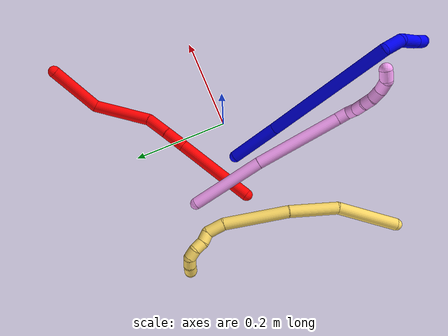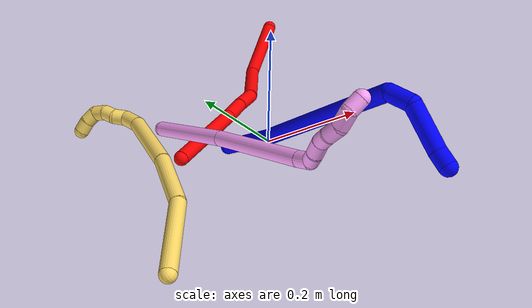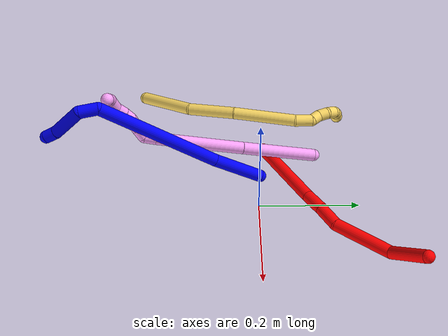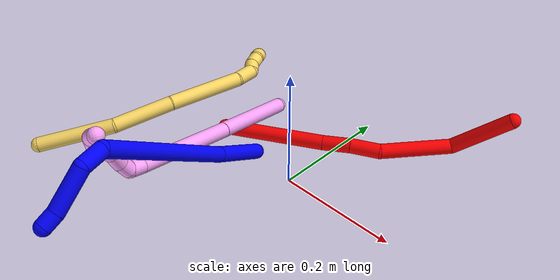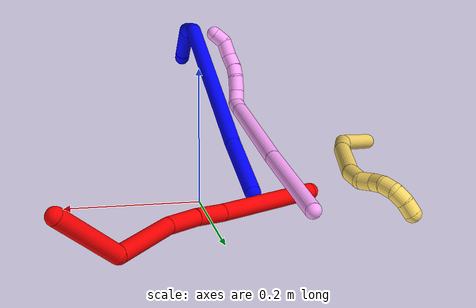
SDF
<sdf version="1.7">
 <world name="default">
  <model name="1">
   <static>0</static>
   <link name="1">
    <collision name="collision-cylinder-e_1_1_4">
     <pose>0.000542 -0.017466 0.050607 0.332321 0.010127 0.001698</pose>
     <geometry><cylinder><radius>0.0125</radius><length>0.107078</length></cylinder></geometry>
     <surface>
      <friction><ode><mu>1.16</mu><mu2>1.16</mu2><slip1>0</slip1><slip2>0</slip2></ode></friction>
      <contact><ode><kp>1e+06</kp><kd>1</kd><max_vel>0</max_vel><min_depth>0.001</min_depth></ode></contact>
     </surface>
    </collision>
    <visual name="visual-cylinder-e_1_1_4">
     <pose>0.000542 -0.017466 0.050607 0.332321 0.010127 0.001698</pose>
     <geometry><cylinder><radius>0.0125</radius><length>0.107078</length></cylinder></geometry>
     <material><ambient>0 0 1 1</ambient></material>
    </visual>
    <collision name="collision-cylinder-e_2_4_5">
     <pose>0.008931 -0.07005 0.228775 0.268658 0.059238 0.008008</pose>
     <geometry><cylinder><radius>0.0125</radius><length>0.265078</length></cylinder></geometry>
     <surface>
      <friction><ode><mu>1.16</mu><mu2>1.16</mu2><slip1>0</slip1><slip2>0</slip2></ode></friction>
      <contact><ode><kp>1e+06</kp><kd>1</kd><max_vel>0</max_vel><min_depth>0.001</min_depth></ode></contact>
     </surface>
    </collision>
    <visual name="visual-cylinder-e_2_4_5">
     <pose>0.008931 -0.07005 0.228775 0.268658 0.059238 0.008008</pose>
     <geometry><cylinder><radius>0.0125</radius><length>0.265078</length></cylinder></geometry>
     <material><ambient>0 0 1 1</ambient></material>
    </visual>
    <collision name="collision-cylinder-e_3_5_6">
     <pose>0.009843 -0.118156 0.368008 0.83862 -0.378052 -0.170139</pose>
     <geometry><cylinder><radius>0.0125</radius><length>0.037578</length></cylinder></geometry>
     <surface>
      <friction><ode><mu>1.16</mu><mu2>1.16</mu2><slip1>0</slip1><slip2>0</slip2></ode></friction>
      <contact><ode><kp>1e+06</kp><kd>1</kd><max_vel>0</max_vel><min_depth>0.001</min_depth></ode></contact>
     </surface>
    </collision>
    <visual name="visual-cylinder-e_3_5_6">
     <pose>0.009843 -0.118156 0.368008 0.83862 -0.378052 -0.170139</pose>
     <geometry><cylinder><radius>0.0125</radius><length>0.037578</length></cylinder></geometry>
     <material><ambient>0 0 1 1</ambient></material>
    </visual>
    <collision name="collision-cylinder-e_4_6_7">
     <pose>-0.020935 -0.154506 0.381062 1.51176 -0.794696 -0.753412</pose>
     <geometry><cylinder><radius>0.0125</radius><length>0.06682</length></cylinder></geometry>
     <surface>
      <friction><ode><mu>1.16</mu><mu2>1.16</mu2><slip1>0</slip1><slip2>0</slip2></ode></friction>
      <contact><ode><kp>1e+06</kp><kd>1</kd><max_vel>0</max_vel><min_depth>0.001</min_depth></ode></contact>
     </surface>
    </collision>
    <visual name="visual-cylinder-e_4_6_7">
     <pose>-0.020935 -0.154506 0.381062 1.51176 -0.794696 -0.753412</pose>
     <geometry><cylinder><radius>0.0125</radius><length>0.06682</length></cylinder></geometry>
     <material><ambient>0 0 1 1</ambient></material>
    </visual>
    <collision name="collision-cylinder-e_5_7_2">
     <pose>-0.053116 -0.185398 0.385795 1.15195 -0.791196 -0.529679</pose>
     <geometry><cylinder><radius>0.0125</radius><length>0.023447</length></cylinder></geometry>
     <surface>
      <friction><ode><mu>1.16</mu><mu2>1.16</mu2><slip1>0</slip1><slip2>0</slip2></ode></friction>
      <contact><ode><kp>1e+06</kp><kd>1</kd><max_vel>0</max_vel><min_depth>0.001</min_depth></ode></contact>
     </surface>
    </collision>
    <visual name="visual-cylinder-e_5_7_2">
     <pose>-0.053116 -0.185398 0.385795 1.15195 -0.791196 -0.529679</pose>
     <geometry><cylinder><radius>0.0125</radius><length>0.023447</length></cylinder></geometry>
     <material><ambient>0 0 1 1</ambient></material>
    </visual>
    <collision name="collision-sphere-2">
     <pose>-0.061453 -0.192927 0.389147 0 -0 0</pose>
     <geometry><sphere><radius>0.0125</radius></sphere></geometry>
     <surface>
      <friction><ode><mu>1.16</mu><mu2>1.16</mu2><slip1>0</slip1><slip2>0</slip2></ode></friction>
      <contact><ode><kp>1e+06</kp><kd>1</kd><max_vel>0</max_vel><min_depth>0.001</min_depth></ode></contact>
     </surface>
    </collision>
    <visual name="visual-sphere-2">
     <pose>-0.061453 -0.192927 0.389147 0 -0 0</pose>
     <geometry><sphere><radius>0.0125</radius></sphere></geometry>
     <material><ambient>0 0 1 1</ambient></material>
    </visual>
    <collision name="collision-sphere-7">
     <pose>-0.044778 -0.177869 0.382443 0 -0 0</pose>
     <geometry><sphere><radius>0.0125</radius></sphere></geometry>
     <surface>
      <friction><ode><mu>1.16</mu><mu2>1.16</mu2><slip1>0</slip1><slip2>0</slip2></ode></friction>
      <contact><ode><kp>1e+06</kp><kd>1</kd><max_vel>0</max_vel><min_depth>0.001</min_depth></ode></contact>
     </surface>
    </collision>
    <visual name="visual-sphere-7">
     <pose>-0.044778 -0.177869 0.382443 0 -0 0</pose>
     <geometry><sphere><radius>0.0125</radius></sphere></geometry>
     <material><ambient>0 0 1 1</ambient></material>
    </visual>
    <collision name="collision-sphere-6">
     <pose>0.002908 -0.131143 0.379682 0 -0 0</pose>
     <geometry><sphere><radius>0.0125</radius></sphere></geometry>
     <surface>
      <friction><ode><mu>1.16</mu><mu2>1.16</mu2><slip1>0</slip1><slip2>0</slip2></ode></friction>
      <contact><ode><kp>1e+06</kp><kd>1</kd><max_vel>0</max_vel><min_depth>0.001</min_depth></ode></contact>
     </surface>
    </collision>
    <visual name="visual-sphere-6">
     <pose>0.002908 -0.131143 0.379682 0 -0 0</pose>
     <geometry><sphere><radius>0.0125</radius></sphere></geometry>
     <material><ambient>0 0 1 1</ambient></material>
    </visual>
    <collision name="collision-sphere-5">
     <pose>0.016778 -0.105169 0.356335 0 -0 0</pose>
     <geometry><sphere><radius>0.0125</radius></sphere></geometry>
     <surface>
      <friction><ode><mu>1.16</mu><mu2>1.16</mu2><slip1>0</slip1><slip2>0</slip2></ode></friction>
      <contact><ode><kp>1e+06</kp><kd>1</kd><max_vel>0</max_vel><min_depth>0.001</min_depth></ode></contact>
     </surface>
    </collision>
    <visual name="visual-sphere-5">
     <pose>0.016778 -0.105169 0.356335 0 -0 0</pose>
     <geometry><sphere><radius>0.0125</radius></sphere></geometry>
     <material><ambient>0 0 1 1</ambient></material>
    </visual>
    <collision name="collision-sphere-1">
     <geometry><sphere><radius>0.0125</radius></sphere></geometry>
     <surface>
      <friction><ode><mu>1.16</mu><mu2>1.16</mu2><slip1>0</slip1><slip2>0</slip2></ode></friction>
      <contact><ode><kp>1e+06</kp><kd>1</kd><max_vel>0</max_vel><min_depth>0.001</min_depth></ode></contact>
     </surface>
    </collision>
    <visual name="visual-sphere-1">
     <geometry><sphere><radius>0.0125</radius></sphere></geometry>
     <material><ambient>0 0 1 1</ambient></material>
    </visual>
    <collision name="collision-sphere-4">
     <pose>0.001084 -0.034931 0.101214 0 -0 0</pose>
     <geometry><sphere><radius>0.0125</radius></sphere></geometry>
     <surface>
      <friction><ode><mu>1.16</mu><mu2>1.16</mu2><slip1>0</slip1><slip2>0</slip2></ode></friction>
      <contact><ode><kp>1e+06</kp><kd>1</kd><max_vel>0</max_vel><min_depth>0.001</min_depth></ode></contact>
     </surface>
    </collision>
    <visual name="visual-sphere-4">
     <pose>0.001084 -0.034931 0.101214 0 -0 0</pose>
     <geometry><sphere><radius>0.0125</radius></sphere></geometry>
     <material><ambient>0 0 1 1</ambient></material>
    </visual>
    <inertial>
     <pose>0.000302 -0.0791 0.228798 0 -0 0</pose>
     <mass>0.5</mass>
     <inertia><ixx>0.00168</ixx><ixy>0</ixy><ixz>0</ixz><iyy>0.00161</iyy><iyz>0</iyz><izz>0.000433</izz></inertia>
    </inertial>
   </link>
   <pose>-0.079628 0.005748 0.011524 0.577092 -0.633606 0.550475</pose>
  </model>
  <model name="2">
   <static>0</static>
   <link name="2">
    <collision name="collision-cylinder-e_1_1_4">
     <pose>0.045249 0.004113 0.072154 -0.056941 0.559393 -0.016359</pose>
     <geometry><cylinder><radius>0.0125</radius><length>0.170537</length></cylinder></geometry>
     <surface>
      <friction><ode><mu>1.16</mu><mu2>1.16</mu2><slip1>0</slip1><slip2>0</slip2></ode></friction>
      <contact><ode><kp>1e+06</kp><kd>1</kd><max_vel>0</max_vel><min_depth>0.001</min_depth></ode></contact>
     </surface>
    </collision>
    <visual name="visual-cylinder-e_1_1_4">
     <pose>0.045249 0.004113 0.072154 -0.056941 0.559393 -0.016359</pose>
     <geometry><cylinder><radius>0.0125</radius><length>0.170537</length></cylinder></geometry>
     <material><ambient>1 0 0 1</ambient></material>
    </visual>
    <collision name="collision-cylinder-e_2_4_5">
     <pose>0.101672 0.008968 0.164794 -0.036212 0.499045 -0.009229</pose>
     <geometry><cylinder><radius>0.0125</radius><length>0.046693</length></cylinder></geometry>
     <surface>
      <friction><ode><mu>1.16</mu><mu2>1.16</mu2><slip1>0</slip1><slip2>0</slip2></ode></friction>
      <contact><ode><kp>1e+06</kp><kd>1</kd><max_vel>0</max_vel><min_depth>0.001</min_depth></ode></contact>
     </surface>
    </collision>
    <visual name="visual-cylinder-e_2_4_5">
     <pose>0.101672 0.008968 0.164794 -0.036212 0.499045 -0.009229</pose>
     <geometry><cylinder><radius>0.0125</radius><length>0.046693</length></cylinder></geometry>
     <material><ambient>1 0 0 1</ambient></material>
    </visual>
    <collision name="collision-cylinder-e_3_5_6">
     <pose>0.12658 0.011612 0.2055 -0.093755 0.594621 -0.028745</pose>
     <geometry><cylinder><radius>0.0125</radius><length>0.049034</length></cylinder></geometry>
     <surface>
      <friction><ode><mu>1.16</mu><mu2>1.16</mu2><slip1>0</slip1><slip2>0</slip2></ode></friction>
      <contact><ode><kp>1e+06</kp><kd>1</kd><max_vel>0</max_vel><min_depth>0.001</min_depth></ode></contact>
     </surface>
    </collision>
    <visual name="visual-cylinder-e_3_5_6">
     <pose>0.12658 0.011612 0.2055 -0.093755 0.594621 -0.028745</pose>
     <geometry><cylinder><radius>0.0125</radius><length>0.049034</length></cylinder></geometry>
     <material><ambient>1 0 0 1</ambient></material>
    </visual>
    <collision name="collision-cylinder-e_4_6_7">
     <pose>0.161838 0.038472 0.276794 -0.454545 0.361952 -0.084584</pose>
     <geometry><cylinder><radius>0.0125</radius><length>0.121569</length></cylinder></geometry>
     <surface>
      <friction><ode><mu>1.16</mu><mu2>1.16</mu2><slip1>0</slip1><slip2>0</slip2></ode></friction>
      <contact><ode><kp>1e+06</kp><kd>1</kd><max_vel>0</max_vel><min_depth>0.001</min_depth></ode></contact>
     </surface>
    </collision>
    <visual name="visual-cylinder-e_4_6_7">
     <pose>0.161838 0.038472 0.276794 -0.454545 0.361952 -0.084584</pose>
     <geometry><cylinder><radius>0.0125</radius><length>0.121569</length></cylinder></geometry>
     <material><ambient>1 0 0 1</ambient></material>
    </visual>
    <collision name="collision-cylinder-e_5_7_2">
     <pose>0.180739 0.052511 0.382816 0.196155 -0.046797 -0.004605</pose>
     <geometry><cylinder><radius>0.0125</radius><length>0.112167</length></cylinder></geometry>
     <surface>
      <friction><ode><mu>1.16</mu><mu2>1.16</mu2><slip1>0</slip1><slip2>0</slip2></ode></friction>
      <contact><ode><kp>1e+06</kp><kd>1</kd><max_vel>0</max_vel><min_depth>0.001</min_depth></ode></contact>
     </surface>
    </collision>
    <visual name="visual-cylinder-e_5_7_2">
     <pose>0.180739 0.052511 0.382816 0.196155 -0.046797 -0.004605</pose>
     <geometry><cylinder><radius>0.0125</radius><length>0.112167</length></cylinder></geometry>
     <material><ambient>1 0 0 1</ambient></material>
    </visual>
    <collision name="collision-sphere-2">
     <pose>0.178115 0.041593 0.437763 0 -0 0</pose>
     <geometry><sphere><radius>0.0125</radius></sphere></geometry>
     <surface>
      <friction><ode><mu>1.16</mu><mu2>1.16</mu2><slip1>0</slip1><slip2>0</slip2></ode></friction>
      <contact><ode><kp>1e+06</kp><kd>1</kd><max_vel>0</max_vel><min_depth>0.001</min_depth></ode></contact>
     </surface>
    </collision>
    <visual name="visual-sphere-2">
     <pose>0.178115 0.041593 0.437763 0 -0 0</pose>
     <geometry><sphere><radius>0.0125</radius></sphere></geometry>
     <material><ambient>1 0 0 1</ambient></material>
    </visual>
    <collision name="collision-sphere-7">
     <pose>0.183362 0.06343 0.327868 0 -0 0</pose>
     <geometry><sphere><radius>0.0125</radius></sphere></geometry>
     <surface>
      <friction><ode><mu>1.16</mu><mu2>1.16</mu2><slip1>0</slip1><slip2>0</slip2></ode></friction>
      <contact><ode><kp>1e+06</kp><kd>1</kd><max_vel>0</max_vel><min_depth>0.001</min_depth></ode></contact>
     </surface>
    </collision>
    <visual name="visual-sphere-7">
     <pose>0.183362 0.06343 0.327868 0 -0 0</pose>
     <geometry><sphere><radius>0.0125</radius></sphere></geometry>
     <material><ambient>1 0 0 1</ambient></material>
    </visual>
    <collision name="collision-sphere-6">
     <pose>0.140314 0.013513 0.22572 0 -0 0</pose>
     <geometry><sphere><radius>0.0125</radius></sphere></geometry>
     <surface>
      <friction><ode><mu>1.16</mu><mu2>1.16</mu2><slip1>0</slip1><slip2>0</slip2></ode></friction>
      <contact><ode><kp>1e+06</kp><kd>1</kd><max_vel>0</max_vel><min_depth>0.001</min_depth></ode></contact>
     </surface>
    </collision>
    <visual name="visual-sphere-6">
     <pose>0.140314 0.013513 0.22572 0 -0 0</pose>
     <geometry><sphere><radius>0.0125</radius></sphere></geometry>
     <material><ambient>1 0 0 1</ambient></material>
    </visual>
    <collision name="collision-sphere-5">
     <pose>0.112846 0.00971 0.18528 0 -0 0</pose>
     <geometry><sphere><radius>0.0125</radius></sphere></geometry>
     <surface>
      <friction><ode><mu>1.16</mu><mu2>1.16</mu2><slip1>0</slip1><slip2>0</slip2></ode></friction>
      <contact><ode><kp>1e+06</kp><kd>1</kd><max_vel>0</max_vel><min_depth>0.001</min_depth></ode></contact>
     </surface>
    </collision>
    <visual name="visual-sphere-5">
     <pose>0.112846 0.00971 0.18528 0 -0 0</pose>
     <geometry><sphere><radius>0.0125</radius></sphere></geometry>
     <material><ambient>1 0 0 1</ambient></material>
    </visual>
    <collision name="collision-sphere-1">
     <geometry><sphere><radius>0.0125</radius></sphere></geometry>
     <surface>
      <friction><ode><mu>1.16</mu><mu2>1.16</mu2><slip1>0</slip1><slip2>0</slip2></ode></friction>
      <contact><ode><kp>1e+06</kp><kd>1</kd><max_vel>0</max_vel><min_depth>0.001</min_depth></ode></contact>
     </surface>
    </collision>
    <visual name="visual-sphere-1">
     <geometry><sphere><radius>0.0125</radius></sphere></geometry>
     <material><ambient>1 0 0 1</ambient></material>
    </visual>
    <collision name="collision-sphere-4">
     <pose>0.090499 0.008226 0.144309 0 -0 0</pose>
     <geometry><sphere><radius>0.0125</radius></sphere></geometry>
     <surface>
      <friction><ode><mu>1.16</mu><mu2>1.16</mu2><slip1>0</slip1><slip2>0</slip2></ode></friction>
      <contact><ode><kp>1e+06</kp><kd>1</kd><max_vel>0</max_vel><min_depth>0.001</min_depth></ode></contact>
     </surface>
    </collision>
    <visual name="visual-sphere-4">
     <pose>0.090499 0.008226 0.144309 0 -0 0</pose>
     <geometry><sphere><radius>0.0125</radius></sphere></geometry>
     <material><ambient>1 0 0 1</ambient></material>
    </visual>
    <inertial>
     <pose>0.117237 0.024513 0.21333 0 -0 0</pose>
     <mass>0.5</mass>
     <inertia>
      <ixx>0.000635</ixx>
      <ixy>0</ixy>
      <ixz>0</ixz>
      <iyy>0.000686</iyy>
      <iyz>0</iyz>
      <izz>-0.00031</izz>
     </inertia>
    </inertial>
   </link>
   <pose>-0.164543 0.016397 0.011497 -0.692207 0.857531 -0.108972</pose>
  </model>
  <model name="4">
   <static>0</static>
   <link name="4">
    <collision name="collision-cylinder-e_1_1_4">
     <pose>-0.004289 -0.047497 0.061721 0.655899 -0.055013 -0.018722</pose>
     <geometry><cylinder><radius>0.0125</radius><length>0.155998</length></cylinder></geometry>
     <surface>
      <friction><ode><mu>1.16</mu><mu2>1.16</mu2><slip1>0</slip1><slip2>0</slip2></ode></friction>
      <contact><ode><kp>1e+06</kp><kd>1</kd><max_vel>0</max_vel><min_depth>0.001</min_depth></ode></contact>
     </surface>
    </collision>
    <visual name="visual-cylinder-e_1_1_4">
     <pose>-0.004289 -0.047497 0.061721 0.655899 -0.055013 -0.018722</pose>
     <geometry><cylinder><radius>0.0125</radius><length>0.155998</length></cylinder></geometry>
     <material><ambient>1 0.65098 0.996078 1</ambient></material>
    </visual>
    <collision name="collision-cylinder-e_2_4_5">
     <pose>-0.014222 -0.144999 0.198518 0.587569 -0.062495 -0.018913</pose>
     <geometry><cylinder><radius>0.0125</radius><length>0.180763</length></cylinder></geometry>
     <surface>
      <friction><ode><mu>1.16</mu><mu2>1.16</mu2><slip1>0</slip1><slip2>0</slip2></ode></friction>
      <contact><ode><kp>1e+06</kp><kd>1</kd><max_vel>0</max_vel><min_depth>0.001</min_depth></ode></contact>
     </surface>
    </collision>
    <visual name="visual-cylinder-e_2_4_5">
     <pose>-0.014222 -0.144999 0.198518 0.587569 -0.062495 -0.018913</pose>
     <geometry><cylinder><radius>0.0125</radius><length>0.180763</length></cylinder></geometry>
     <material><ambient>1 0.65098 0.996078 1</ambient></material>
    </visual>
    <collision name="collision-cylinder-e_3_5_6">
     <pose>-0.01994 -0.201941 0.283299 0.620655 -0.006141 -0.001969</pose>
     <geometry><cylinder><radius>0.0125</radius><length>0.023858</length></cylinder></geometry>
     <surface>
      <friction><ode><mu>1.16</mu><mu2>1.16</mu2><slip1>0</slip1><slip2>0</slip2></ode></friction>
      <contact><ode><kp>1e+06</kp><kd>1</kd><max_vel>0</max_vel><min_depth>0.001</min_depth></ode></contact>
     </surface>
    </collision>
    <visual name="visual-cylinder-e_3_5_6">
     <pose>-0.01994 -0.201941 0.283299 0.620655 -0.006141 -0.001969</pose>
     <geometry><cylinder><radius>0.0125</radius><length>0.023858</length></cylinder></geometry>
     <material><ambient>1 0.65098 0.996078 1</ambient></material>
    </visual>
    <collision name="collision-cylinder-e_4_6_7">
     <pose>-0.012805 -0.214445 0.298979 0.74996 0.723099 0.29553</pose>
     <geometry><cylinder><radius>0.0125</radius><length>0.021787</length></cylinder></geometry>
     <surface>
      <friction><ode><mu>1.16</mu><mu2>1.16</mu2><slip1>0</slip1><slip2>0</slip2></ode></friction>
      <contact><ode><kp>1e+06</kp><kd>1</kd><max_vel>0</max_vel><min_depth>0.001</min_depth></ode></contact>
     </surface>
    </collision>
    <visual name="visual-cylinder-e_4_6_7">
     <pose>-0.012805 -0.214445 0.298979 0.74996 0.723099 0.29553</pose>
     <geometry><cylinder><radius>0.0125</radius><length>0.021787</length></cylinder></geometry>
     <material><ambient>1 0.65098 0.996078 1</ambient></material>
    </visual>
    <collision name="collision-cylinder-e_5_7_8">
     <pose>0.003375 -0.227687 0.310054 0.984472 0.7721 0.42921</pose>
     <geometry><cylinder><radius>0.0125</radius><length>0.025721</length></cylinder></geometry>
     <surface>
      <friction><ode><mu>1.16</mu><mu2>1.16</mu2><slip1>0</slip1><slip2>0</slip2></ode></friction>
      <contact><ode><kp>1e+06</kp><kd>1</kd><max_vel>0</max_vel><min_depth>0.001</min_depth></ode></contact>
     </surface>
    </collision>
    <visual name="visual-cylinder-e_5_7_8">
     <pose>0.003375 -0.227687 0.310054 0.984472 0.7721 0.42921</pose>
     <geometry><cylinder><radius>0.0125</radius><length>0.025721</length></cylinder></geometry>
     <material><ambient>1 0.65098 0.996078 1</ambient></material>
    </visual>
    <collision name="collision-cylinder-e_6_8_9">
     <pose>0.017368 -0.24185 0.320886 0.846985 0.525512 0.241313</pose>
     <geometry><cylinder><radius>0.0125</radius><length>0.020019</length></cylinder></geometry>
     <surface>
      <friction><ode><mu>1.16</mu><mu2>1.16</mu2><slip1>0</slip1><slip2>0</slip2></ode></friction>
      <contact><ode><kp>1e+06</kp><kd>1</kd><max_vel>0</max_vel><min_depth>0.001</min_depth></ode></contact>
     </surface>
    </collision>
    <visual name="visual-cylinder-e_6_8_9">
     <pose>0.017368 -0.24185 0.320886 0.846985 0.525512 0.241313</pose>
     <geometry><cylinder><radius>0.0125</radius><length>0.020019</length></cylinder></geometry>
     <material><ambient>1 0.65098 0.996078 1</ambient></material>
    </visual>
    <collision name="collision-cylinder-e_7_9_10">
     <pose>0.026878 -0.257563 0.331889 1.0519 0.399754 0.234118</pose>
     <geometry><cylinder><radius>0.0125</radius><length>0.023067</length></cylinder></geometry>
     <surface>
      <friction><ode><mu>1.16</mu><mu2>1.16</mu2><slip1>0</slip1><slip2>0</slip2></ode></friction>
      <contact><ode><kp>1e+06</kp><kd>1</kd><max_vel>0</max_vel><min_depth>0.001</min_depth></ode></contact>
     </surface>
    </collision>
    <visual name="visual-cylinder-e_7_9_10">
     <pose>0.026878 -0.257563 0.331889 1.0519 0.399754 0.234118</pose>
     <geometry><cylinder><radius>0.0125</radius><length>0.023067</length></cylinder></geometry>
     <material><ambient>1 0.65098 0.996078 1</ambient></material>
    </visual>
    <collision name="collision-cylinder-e_8_10_11">
     <pose>0.039649 -0.277455 0.339046 1.39562 0.652749 0.553119</pose>
     <geometry><cylinder><radius>0.0125</radius><length>0.027271</length></cylinder></geometry>
     <surface>
      <friction><ode><mu>1.16</mu><mu2>1.16</mu2><slip1>0</slip1><slip2>0</slip2></ode></friction>
      <contact><ode><kp>1e+06</kp><kd>1</kd><max_vel>0</max_vel><min_depth>0.001</min_depth></ode></contact>
     </surface>
    </collision>
    <visual name="visual-cylinder-e_8_10_11">
     <pose>0.039649 -0.277455 0.339046 1.39562 0.652749 0.553119</pose>
     <geometry><cylinder><radius>0.0125</radius><length>0.027271</length></cylinder></geometry>
     <material><ambient>1 0.65098 0.996078 1</ambient></material>
    </visual>
    <collision name="collision-cylinder-e_9_11_2">
     <pose>0.049913 -0.29836 0.338288 1.82369 0.185323 0.238848</pose>
     <geometry><cylinder><radius>0.0125</radius><length>0.021517</length></cylinder></geometry>
     <surface>
      <friction><ode><mu>1.16</mu><mu2>1.16</mu2><slip1>0</slip1><slip2>0</slip2></ode></friction>
      <contact><ode><kp>1e+06</kp><kd>1</kd><max_vel>0</max_vel><min_depth>0.001</min_depth></ode></contact>
     </surface>
    </collision>
    <visual name="visual-cylinder-e_9_11_2">
     <pose>0.049913 -0.29836 0.338288 1.82369 0.185323 0.238848</pose>
     <geometry><cylinder><radius>0.0125</radius><length>0.021517</length></cylinder></geometry>
     <material><ambient>1 0.65098 0.996078 1</ambient></material>
    </visual>
    <collision name="collision-sphere-2">
     <pose>0.051895 -0.308598 0.335642 0 -0 0</pose>
     <geometry><sphere><radius>0.0125</radius></sphere></geometry>
     <surface>
      <friction><ode><mu>1.16</mu><mu2>1.16</mu2><slip1>0</slip1><slip2>0</slip2></ode></friction>
      <contact><ode><kp>1e+06</kp><kd>1</kd><max_vel>0</max_vel><min_depth>0.001</min_depth></ode></contact>
     </surface>
    </collision>
    <visual name="visual-sphere-2">
     <pose>0.051895 -0.308598 0.335642 0 -0 0</pose>
     <geometry><sphere><radius>0.0125</radius></sphere></geometry>
     <material><ambient>1 0.65098 0.996078 1</ambient></material>
    </visual>
    <collision name="collision-sphere-11">
     <pose>0.047931 -0.288122 0.340933 0 -0 0</pose>
     <geometry><sphere><radius>0.0125</radius></sphere></geometry>
     <surface>
      <friction><ode><mu>1.16</mu><mu2>1.16</mu2><slip1>0</slip1><slip2>0</slip2></ode></friction>
      <contact><ode><kp>1e+06</kp><kd>1</kd><max_vel>0</max_vel><min_depth>0.001</min_depth></ode></contact>
     </surface>
    </collision>
    <visual name="visual-sphere-11">
     <pose>0.047931 -0.288122 0.340933 0 -0 0</pose>
     <geometry><sphere><radius>0.0125</radius></sphere></geometry>
     <material><ambient>1 0.65098 0.996078 1</ambient></material>
    </visual>
    <collision name="collision-sphere-10">
     <pose>0.031367 -0.266789 0.337158 0 -0 0</pose>
     <geometry><sphere><radius>0.0125</radius></sphere></geometry>
     <surface>
      <friction><ode><mu>1.16</mu><mu2>1.16</mu2><slip1>0</slip1><slip2>0</slip2></ode></friction>
      <contact><ode><kp>1e+06</kp><kd>1</kd><max_vel>0</max_vel><min_depth>0.001</min_depth></ode></contact>
     </surface>
    </collision>
    <visual name="visual-sphere-10">
     <pose>0.031367 -0.266789 0.337158 0 -0 0</pose>
     <geometry><sphere><radius>0.0125</radius></sphere></geometry>
     <material><ambient>1 0.65098 0.996078 1</ambient></material>
    </visual>
    <collision name="collision-sphere-9">
     <pose>0.02239 -0.248338 0.32662 0 -0 0</pose>
     <geometry><sphere><radius>0.0125</radius></sphere></geometry>
     <surface>
      <friction><ode><mu>1.16</mu><mu2>1.16</mu2><slip1>0</slip1><slip2>0</slip2></ode></friction>
      <contact><ode><kp>1e+06</kp><kd>1</kd><max_vel>0</max_vel><min_depth>0.001</min_depth></ode></contact>
     </surface>
    </collision>
    <visual name="visual-sphere-9">
     <pose>0.02239 -0.248338 0.32662 0 -0 0</pose>
     <geometry><sphere><radius>0.0125</radius></sphere></geometry>
     <material><ambient>1 0.65098 0.996078 1</ambient></material>
    </visual>
    <collision name="collision-sphere-4">
     <pose>-0.008578 -0.094995 0.123441 0 -0 0</pose>
     <geometry><sphere><radius>0.0125</radius></sphere></geometry>
     <surface>
      <friction><ode><mu>1.16</mu><mu2>1.16</mu2><slip1>0</slip1><slip2>0</slip2></ode></friction>
      <contact><ode><kp>1e+06</kp><kd>1</kd><max_vel>0</max_vel><min_depth>0.001</min_depth></ode></contact>
     </surface>
    </collision>
    <visual name="visual-sphere-4">
     <pose>-0.008578 -0.094995 0.123441 0 -0 0</pose>
     <geometry><sphere><radius>0.0125</radius></sphere></geometry>
     <material><ambient>1 0.65098 0.996078 1</ambient></material>
    </visual>
    <collision name="collision-sphere-1">
     <geometry><sphere><radius>0.0125</radius></sphere></geometry>
     <surface>
      <friction><ode><mu>1.16</mu><mu2>1.16</mu2><slip1>0</slip1><slip2>0</slip2></ode></friction>
      <contact><ode><kp>1e+06</kp><kd>1</kd><max_vel>0</max_vel><min_depth>0.001</min_depth></ode></contact>
     </surface>
    </collision>
    <visual name="visual-sphere-1">
     <geometry><sphere><radius>0.0125</radius></sphere></geometry>
     <material><ambient>1 0.65098 0.996078 1</ambient></material>
    </visual>
    <collision name="collision-sphere-8">
     <pose>0.012347 -0.235362 0.315152 0 -0 0</pose>
     <geometry><sphere><radius>0.0125</radius></sphere></geometry>
     <surface>
      <friction><ode><mu>1.16</mu><mu2>1.16</mu2><slip1>0</slip1><slip2>0</slip2></ode></friction>
      <contact><ode><kp>1e+06</kp><kd>1</kd><max_vel>0</max_vel><min_depth>0.001</min_depth></ode></contact>
     </surface>
    </collision>
    <visual name="visual-sphere-8">
     <pose>0.012347 -0.235362 0.315152 0 -0 0</pose>
     <geometry><sphere><radius>0.0125</radius></sphere></geometry>
     <material><ambient>1 0.65098 0.996078 1</ambient></material>
    </visual>
    <collision name="collision-sphere-5">
     <pose>-0.019867 -0.195004 0.273595 0 -0 0</pose>
     <geometry><sphere><radius>0.0125</radius></sphere></geometry>
     <surface>
      <friction><ode><mu>1.16</mu><mu2>1.16</mu2><slip1>0</slip1><slip2>0</slip2></ode></friction>
      <contact><ode><kp>1e+06</kp><kd>1</kd><max_vel>0</max_vel><min_depth>0.001</min_depth></ode></contact>
     </surface>
    </collision>
    <visual name="visual-sphere-5">
     <pose>-0.019867 -0.195004 0.273595 0 -0 0</pose>
     <geometry><sphere><radius>0.0125</radius></sphere></geometry>
     <material><ambient>1 0.65098 0.996078 1</ambient></material>
    </visual>
    <collision name="collision-sphere-6">
     <pose>-0.020014 -0.208878 0.293003 0 -0 0</pose>
     <geometry><sphere><radius>0.0125</radius></sphere></geometry>
     <surface>
      <friction><ode><mu>1.16</mu><mu2>1.16</mu2><slip1>0</slip1><slip2>0</slip2></ode></friction>
      <contact><ode><kp>1e+06</kp><kd>1</kd><max_vel>0</max_vel><min_depth>0.001</min_depth></ode></contact>
     </surface>
    </collision>
    <visual name="visual-sphere-6">
     <pose>-0.020014 -0.208878 0.293003 0 -0 0</pose>
     <geometry><sphere><radius>0.0125</radius></sphere></geometry>
     <material><ambient>1 0.65098 0.996078 1</ambient></material>
    </visual>
    <collision name="collision-sphere-7">
     <pose>-0.005597 -0.220012 0.304956 0 -0 0</pose>
     <geometry><sphere><radius>0.0125</radius></sphere></geometry>
     <surface>
      <friction><ode><mu>1.16</mu><mu2>1.16</mu2><slip1>0</slip1><slip2>0</slip2></ode></friction>
      <contact><ode><kp>1e+06</kp><kd>1</kd><max_vel>0</max_vel><min_depth>0.001</min_depth></ode></contact>
     </surface>
    </collision>
    <visual name="visual-sphere-7">
     <pose>-0.005597 -0.220012 0.304956 0 -0 0</pose>
     <geometry><sphere><radius>0.0125</radius></sphere></geometry>
     <material><ambient>1 0.65098 0.996078 1</ambient></material>
    </visual>
    <inertial>
     <pose>-0.00157 -0.14747 0.19473 0 -0 0</pose>
     <mass>0.5</mass>
     <inertia>
      <ixx>0.000823</ixx>
      <ixy>0</ixy>
      <ixz>0</ixz>
      <iyy>0.000643</iyy>
      <iyz>0</iyz>
      <izz>0.000551</izz>
     </inertia>
    </inertial>
   </link>
   <pose>-0.140605 0.120225 0.0147 -1.57941 -1.05279 2.68087</pose>
  </model>
  <model name="5">
   <static>0</static>
   <link name="5">
    <collision name="collision-cylinder-e_1_1_4">
     <pose>0.034523 0.053909 0.007248 -1.43715 0.565531 -0.497671</pose>
     <geometry><cylinder><radius>0.0125</radius><length>0.128849</length></cylinder></geometry>
     <surface>
      <friction><ode><mu>1.16</mu><mu2>1.16</mu2><slip1>0</slip1><slip2>0</slip2></ode></friction>
      <contact><ode><kp>1e+06</kp><kd>1</kd><max_vel>0</max_vel><min_depth>0.001</min_depth></ode></contact>
     </surface>
    </collision>
    <visual name="visual-cylinder-e_1_1_4">
     <pose>0.034523 0.053909 0.007248 -1.43715 0.565531 -0.497671</pose>
     <geometry><cylinder><radius>0.0125</radius><length>0.128849</length></cylinder></geometry>
     <material><ambient>1 0.858824 0.4 1</ambient></material>
    </visual>
    <collision name="collision-cylinder-e_2_4_5">
     <pose>0.081215 0.156047 0.025498 -1.34651 0.241224 -0.192732</pose>
     <geometry><cylinder><radius>0.0125</radius><length>0.101888</length></cylinder></geometry>
     <surface>
      <friction><ode><mu>1.16</mu><mu2>1.16</mu2><slip1>0</slip1><slip2>0</slip2></ode></friction>
      <contact><ode><kp>1e+06</kp><kd>1</kd><max_vel>0</max_vel><min_depth>0.001</min_depth></ode></contact>
     </surface>
    </collision>
    <visual name="visual-cylinder-e_2_4_5">
     <pose>0.081215 0.156047 0.025498 -1.34651 0.241224 -0.192732</pose>
     <geometry><cylinder><radius>0.0125</radius><length>0.101888</length></cylinder></geometry>
     <material><ambient>1 0.858824 0.4 1</ambient></material>
    </visual>
    <collision name="collision-cylinder-e_3_5_6">
     <pose>0.099423 0.268874 0.047596 -1.40068 0.091863 -0.077445</pose>
     <geometry><cylinder><radius>0.0125</radius><length>0.13164</length></cylinder></geometry>
     <surface>
      <friction><ode><mu>1.16</mu><mu2>1.16</mu2><slip1>0</slip1><slip2>0</slip2></ode></friction>
      <contact><ode><kp>1e+06</kp><kd>1</kd><max_vel>0</max_vel><min_depth>0.001</min_depth></ode></contact>
     </surface>
    </collision>
    <visual name="visual-cylinder-e_3_5_6">
     <pose>0.099423 0.268874 0.047596 -1.40068 0.091863 -0.077445</pose>
     <geometry><cylinder><radius>0.0125</radius><length>0.13164</length></cylinder></geometry>
     <material><ambient>1 0.858824 0.4 1</ambient></material>
    </visual>
    <collision name="collision-cylinder-e_4_6_7">
     <pose>0.102005 0.350632 0.063293 -1.30885 -0.192106 0.147572</pose>
     <geometry><cylinder><radius>0.0125</radius><length>0.036202</length></cylinder></geometry>
     <surface>
      <friction><ode><mu>1.16</mu><mu2>1.16</mu2><slip1>0</slip1><slip2>0</slip2></ode></friction>
      <contact><ode><kp>1e+06</kp><kd>1</kd><max_vel>0</max_vel><min_depth>0.001</min_depth></ode></contact>
     </surface>
    </collision>
    <visual name="visual-cylinder-e_4_6_7">
     <pose>0.102005 0.350632 0.063293 -1.30885 -0.192106 0.147572</pose>
     <geometry><cylinder><radius>0.0125</radius><length>0.036202</length></cylinder></geometry>
     <material><ambient>1 0.858824 0.4 1</ambient></material>
    </visual>
    <collision name="collision-cylinder-e_5_7_8">
     <pose>0.091988 0.373582 0.073588 -0.79361 -0.679739 0.294191</pose>
     <geometry><cylinder><radius>0.0125</radius><length>0.020877</length></cylinder></geometry>
     <surface>
      <friction><ode><mu>1.16</mu><mu2>1.16</mu2><slip1>0</slip1><slip2>0</slip2></ode></friction>
      <contact><ode><kp>1e+06</kp><kd>1</kd><max_vel>0</max_vel><min_depth>0.001</min_depth></ode></contact>
     </surface>
    </collision>
    <visual name="visual-cylinder-e_5_7_8">
     <pose>0.091988 0.373582 0.073588 -0.79361 -0.679739 0.294191</pose>
     <geometry><cylinder><radius>0.0125</radius><length>0.020877</length></cylinder></geometry>
     <material><ambient>1 0.858824 0.4 1</ambient></material>
    </visual>
    <collision name="collision-cylinder-e_6_8_9">
     <pose>0.081887 0.387581 0.08418 -1.03293 -0.354469 0.202733</pose>
     <geometry><cylinder><radius>0.0125</radius><length>0.020392</length></cylinder></geometry>
     <surface>
      <friction><ode><mu>1.16</mu><mu2>1.16</mu2><slip1>0</slip1><slip2>0</slip2></ode></friction>
      <contact><ode><kp>1e+06</kp><kd>1</kd><max_vel>0</max_vel><min_depth>0.001</min_depth></ode></contact>
     </surface>
    </collision>
    <visual name="visual-cylinder-e_6_8_9">
     <pose>0.081887 0.387581 0.08418 -1.03293 -0.354469 0.202733</pose>
     <geometry><cylinder><radius>0.0125</radius><length>0.020392</length></cylinder></geometry>
     <material><ambient>1 0.858824 0.4 1</ambient></material>
    </visual>
    <collision name="collision-cylinder-e_7_9_10">
     <pose>0.071735 0.403023 0.091343 -1.26727 -0.717644 0.537761</pose>
     <geometry><cylinder><radius>0.0125</radius><length>0.020113</length></cylinder></geometry>
     <surface>
      <friction><ode><mu>1.16</mu><mu2>1.16</mu2><slip1>0</slip1><slip2>0</slip2></ode></friction>
      <contact><ode><kp>1e+06</kp><kd>1</kd><max_vel>0</max_vel><min_depth>0.001</min_depth></ode></contact>
     </surface>
    </collision>
    <visual name="visual-cylinder-e_7_9_10">
     <pose>0.071735 0.403023 0.091343 -1.26727 -0.717644 0.537761</pose>
     <geometry><cylinder><radius>0.0125</radius><length>0.020113</length></cylinder></geometry>
     <material><ambient>1 0.858824 0.4 1</ambient></material>
    </visual>
    <collision name="collision-cylinder-e_8_10_11">
     <pose>0.055762 0.413178 0.091618 -2.16799 -1.20944 1.83443</pose>
     <geometry><cylinder><radius>0.0125</radius><length>0.020013</length></cylinder></geometry>
     <surface>
      <friction><ode><mu>1.16</mu><mu2>1.16</mu2><slip1>0</slip1><slip2>0</slip2></ode></friction>
      <contact><ode><kp>1e+06</kp><kd>1</kd><max_vel>0</max_vel><min_depth>0.001</min_depth></ode></contact>
     </surface>
    </collision>
    <visual name="visual-cylinder-e_8_10_11">
     <pose>0.055762 0.413178 0.091618 -2.16799 -1.20944 1.83443</pose>
     <geometry><cylinder><radius>0.0125</radius><length>0.020013</length></cylinder></geometry>
     <material><ambient>1 0.858824 0.4 1</ambient></material>
    </visual>
    <collision name="collision-cylinder-e_9_11_2">
     <pose>0.037609 0.418384 0.085415 -2.64555 -1.07187 2.33551</pose>
     <geometry><cylinder><radius>0.0125</radius><length>0.020026</length></cylinder></geometry>
     <surface>
      <friction><ode><mu>1.16</mu><mu2>1.16</mu2><slip1>0</slip1><slip2>0</slip2></ode></friction>
      <contact><ode><kp>1e+06</kp><kd>1</kd><max_vel>0</max_vel><min_depth>0.001</min_depth></ode></contact>
     </surface>
    </collision>
    <visual name="visual-cylinder-e_9_11_2">
     <pose>0.037609 0.418384 0.085415 -2.64555 -1.07187 2.33551</pose>
     <geometry><cylinder><radius>0.0125</radius><length>0.020026</length></cylinder></geometry>
     <material><ambient>1 0.858824 0.4 1</ambient></material>
    </visual>
    <collision name="collision-sphere-2">
     <pose>0.028817 0.420664 0.081201 0 -0 0</pose>
     <geometry><sphere><radius>0.0125</radius></sphere></geometry>
     <surface>
      <friction><ode><mu>1.16</mu><mu2>1.16</mu2><slip1>0</slip1><slip2>0</slip2></ode></friction>
      <contact><ode><kp>1e+06</kp><kd>1</kd><max_vel>0</max_vel><min_depth>0.001</min_depth></ode></contact>
     </surface>
    </collision>
    <visual name="visual-sphere-2">
     <pose>0.028817 0.420664 0.081201 0 -0 0</pose>
     <geometry><sphere><radius>0.0125</radius></sphere></geometry>
     <material><ambient>1 0.858824 0.4 1</ambient></material>
    </visual>
    <collision name="collision-sphere-11">
     <pose>0.046401 0.416104 0.089629 0 -0 0</pose>
     <geometry><sphere><radius>0.0125</radius></sphere></geometry>
     <surface>
      <friction><ode><mu>1.16</mu><mu2>1.16</mu2><slip1>0</slip1><slip2>0</slip2></ode></friction>
      <contact><ode><kp>1e+06</kp><kd>1</kd><max_vel>0</max_vel><min_depth>0.001</min_depth></ode></contact>
     </surface>
    </collision>
    <visual name="visual-sphere-11">
     <pose>0.046401 0.416104 0.089629 0 -0 0</pose>
     <geometry><sphere><radius>0.0125</radius></sphere></geometry>
     <material><ambient>1 0.858824 0.4 1</ambient></material>
    </visual>
    <collision name="collision-sphere-10">
     <pose>0.065122 0.410253 0.093607 0 -0 0</pose>
     <geometry><sphere><radius>0.0125</radius></sphere></geometry>
     <surface>
      <friction><ode><mu>1.16</mu><mu2>1.16</mu2><slip1>0</slip1><slip2>0</slip2></ode></friction>
      <contact><ode><kp>1e+06</kp><kd>1</kd><max_vel>0</max_vel><min_depth>0.001</min_depth></ode></contact>
     </surface>
    </collision>
    <visual name="visual-sphere-10">
     <pose>0.065122 0.410253 0.093607 0 -0 0</pose>
     <geometry><sphere><radius>0.0125</radius></sphere></geometry>
     <material><ambient>1 0.858824 0.4 1</ambient></material>
    </visual>
    <collision name="collision-sphere-9">
     <pose>0.078348 0.395793 0.089078 0 -0 0</pose>
     <geometry><sphere><radius>0.0125</radius></sphere></geometry>
     <surface>
      <friction><ode><mu>1.16</mu><mu2>1.16</mu2><slip1>0</slip1><slip2>0</slip2></ode></friction>
      <contact><ode><kp>1e+06</kp><kd>1</kd><max_vel>0</max_vel><min_depth>0.001</min_depth></ode></contact>
     </surface>
    </collision>
    <visual name="visual-sphere-9">
     <pose>0.078348 0.395793 0.089078 0 -0 0</pose>
     <geometry><sphere><radius>0.0125</radius></sphere></geometry>
     <material><ambient>1 0.858824 0.4 1</ambient></material>
    </visual>
    <collision name="collision-sphere-4">
     <pose>0.069045 0.107817 0.014495 0 -0 0</pose>
     <geometry><sphere><radius>0.0125</radius></sphere></geometry>
     <surface>
      <friction><ode><mu>1.16</mu><mu2>1.16</mu2><slip1>0</slip1><slip2>0</slip2></ode></friction>
      <contact><ode><kp>1e+06</kp><kd>1</kd><max_vel>0</max_vel><min_depth>0.001</min_depth></ode></contact>
     </surface>
    </collision>
    <visual name="visual-sphere-4">
     <pose>0.069045 0.107817 0.014495 0 -0 0</pose>
     <geometry><sphere><radius>0.0125</radius></sphere></geometry>
     <material><ambient>1 0.858824 0.4 1</ambient></material>
    </visual>
    <collision name="collision-sphere-1">
     <geometry><sphere><radius>0.0125</radius></sphere></geometry>
     <surface>
      <friction><ode><mu>1.16</mu><mu2>1.16</mu2><slip1>0</slip1><slip2>0</slip2></ode></friction>
      <contact><ode><kp>1e+06</kp><kd>1</kd><max_vel>0</max_vel><min_depth>0.001</min_depth></ode></contact>
     </surface>
    </collision>
    <visual name="visual-sphere-1">
     <geometry><sphere><radius>0.0125</radius></sphere></geometry>
     <material><ambient>1 0.858824 0.4 1</ambient></material>
    </visual>
    <collision name="collision-sphere-8">
     <pose>0.085426 0.379369 0.079281 0 -0 0</pose>
     <geometry><sphere><radius>0.0125</radius></sphere></geometry>
     <surface>
      <friction><ode><mu>1.16</mu><mu2>1.16</mu2><slip1>0</slip1><slip2>0</slip2></ode></friction>
      <contact><ode><kp>1e+06</kp><kd>1</kd><max_vel>0</max_vel><min_depth>0.001</min_depth></ode></contact>
     </surface>
    </collision>
    <visual name="visual-sphere-8">
     <pose>0.085426 0.379369 0.079281 0 -0 0</pose>
     <geometry><sphere><radius>0.0125</radius></sphere></geometry>
     <material><ambient>1 0.858824 0.4 1</ambient></material>
    </visual>
    <collision name="collision-sphere-5">
     <pose>0.093386 0.204277 0.0365 0 -0 0</pose>
     <geometry><sphere><radius>0.0125</radius></sphere></geometry>
     <surface>
      <friction><ode><mu>1.16</mu><mu2>1.16</mu2><slip1>0</slip1><slip2>0</slip2></ode></friction>
      <contact><ode><kp>1e+06</kp><kd>1</kd><max_vel>0</max_vel><min_depth>0.001</min_depth></ode></contact>
     </surface>
    </collision>
    <visual name="visual-sphere-5">
     <pose>0.093386 0.204277 0.0365 0 -0 0</pose>
     <geometry><sphere><radius>0.0125</radius></sphere></geometry>
     <material><ambient>1 0.858824 0.4 1</ambient></material>
    </visual>
    <collision name="collision-sphere-6">
     <pose>0.105461 0.33347 0.058692 0 -0 0</pose>
     <geometry><sphere><radius>0.0125</radius></sphere></geometry>
     <surface>
      <friction><ode><mu>1.16</mu><mu2>1.16</mu2><slip1>0</slip1><slip2>0</slip2></ode></friction>
      <contact><ode><kp>1e+06</kp><kd>1</kd><max_vel>0</max_vel><min_depth>0.001</min_depth></ode></contact>
     </surface>
    </collision>
    <visual name="visual-sphere-6">
     <pose>0.105461 0.33347 0.058692 0 -0 0</pose>
     <geometry><sphere><radius>0.0125</radius></sphere></geometry>
     <material><ambient>1 0.858824 0.4 1</ambient></material>
    </visual>
    <collision name="collision-sphere-7">
     <pose>0.098549 0.367794 0.067894 0 -0 0</pose>
     <geometry><sphere><radius>0.0125</radius></sphere></geometry>
     <surface>
      <friction><ode><mu>1.16</mu><mu2>1.16</mu2><slip1>0</slip1><slip2>0</slip2></ode></friction>
      <contact><ode><kp>1e+06</kp><kd>1</kd><max_vel>0</max_vel><min_depth>0.001</min_depth></ode></contact>
     </surface>
    </collision>
    <visual name="visual-sphere-7">
     <pose>0.098549 0.367794 0.067894 0 -0 0</pose>
     <geometry><sphere><radius>0.0125</radius></sphere></geometry>
     <material><ambient>1 0.858824 0.4 1</ambient></material>
    </visual>
    <inertial>
     <pose>0.072812 0.22278 0.041446 0 -0 0</pose>
     <mass>0.5</mass>
     <inertia>
      <ixx>0.000325</ixx>
      <ixy>0</ixy>
      <ixz>0</ixz>
      <iyy>6.3e-05</iyy>
      <iyz>0</iyz>
      <izz>-0.000567</izz>
     </inertia>
    </inertial>
   </link>
   <pose>-0.340419 -0.24122 0.019975 -0.225403 -0.512933 -0.104677</pose>
  </model>
 </world>
</sdf>
